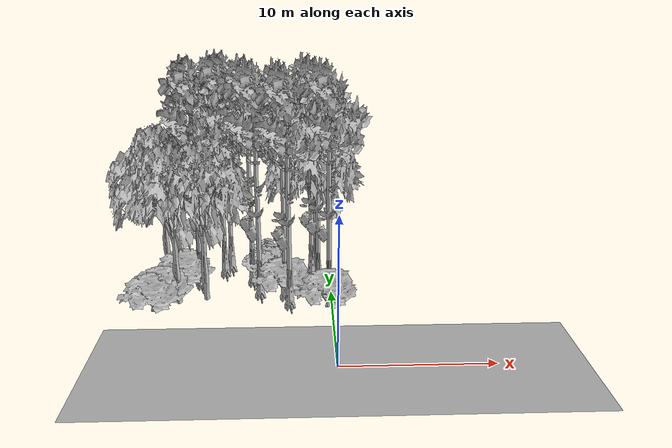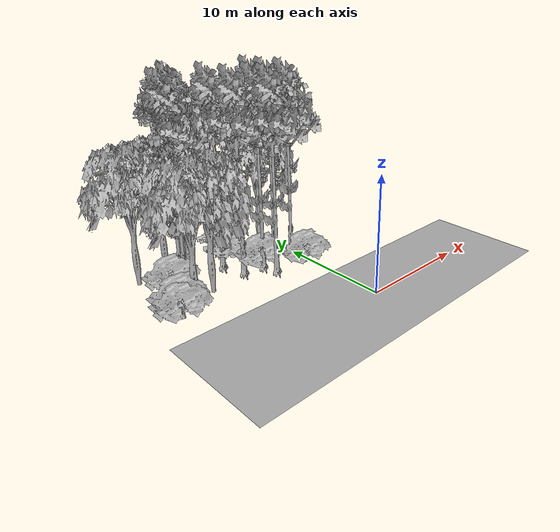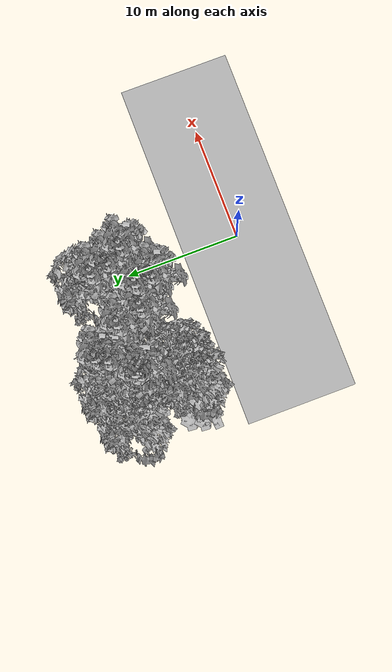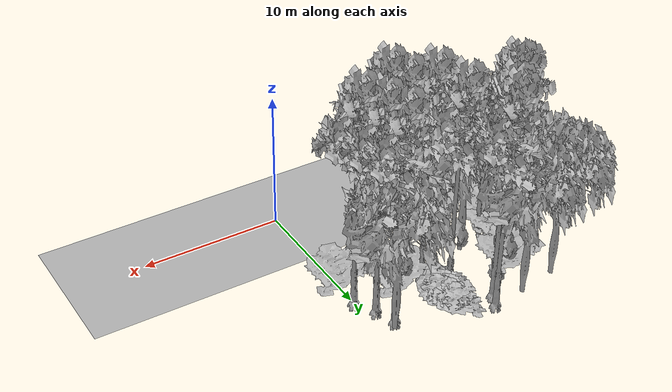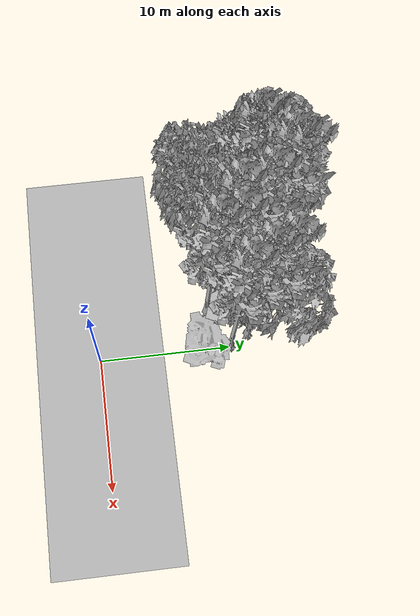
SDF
<sdf version="1.7">
 <world name="default">
  <model name="ground_plane">
   <static>1</static>
   <link name="link">
    <collision name="collision">
     <pose>-50 0 0 0 -0 0</pose>
     <geometry><plane><normal>0 0 1</normal><size>100 100</size></plane></geometry>
     <surface><contact><ode><min_depth>0.01</min_depth><max_vel>0</max_vel></ode></contact></surface>
    </collision>
    <visual name="grass">
     <cast_shadows>0</cast_shadows>
     <geometry>
      <mesh>
       <scale>0.5814285714285714 0.18142857142857144 0.1</scale>
       <uri>file://grass_plane/meshes/grass_plane.dae</uri>
      </mesh>
     </geometry>
    </visual>
   </link>
  </model>
  <model name="Tree 5">
   <static>1</static>
   <pose>-5.264318395612278 13.550032690171253 0 1.57079 -0 0</pose>
   <link name="link">
    <collision name="collision">
     <geometry><mesh><scale>4 2.5 4</scale><uri>model://tree_1/meshes/tree_1.obj</uri></mesh></geometry>
    </collision>
    <visual name="visual">
     <geometry><mesh><scale>4 2.5 4</scale><uri>model://tree_1/meshes/tree_1.obj</uri></mesh></geometry>
    </visual>
   </link>
  </model>
  <model name="Tree 16">
   <static>1</static>
   <pose>-10.024421451301343 12.044135002311886 0 1.57079 -0 0</pose>
   <link name="link">
    <collision name="collision">
     <geometry><mesh><scale>3.5 5 3.5</scale><uri>model://tree_9/meshes/tree_9.obj</uri></mesh></geometry>
    </collision>
    <visual name="visual">
     <geometry><mesh><scale>3.5 5 3.5</scale><uri>model://tree_9/meshes/tree_9.obj</uri></mesh></geometry>
    </visual>
   </link>
  </model>
  <model name="Tree 25">
   <static>1</static>
   <pose>-6.026550712602656 12.424141168342885 0 1.57079 -0 0</pose>
   <link name="link">
    <collision name="collision">
     <geometry><mesh><scale>3.5 5 3.5</scale><uri>model://tree_9/meshes/tree_9.obj</uri></mesh></geometry>
    </collision>
    <visual name="visual">
     <geometry><mesh><scale>3.5 5 3.5</scale><uri>model://tree_9/meshes/tree_9.obj</uri></mesh></geometry>
    </visual>
   </link>
  </model>
  <model name="Tree 89">
   <static>1</static>
   <pose>-13.046634344458937 14.291615541690458 0 1.57079 -0 0</pose>
   <link name="link">
    <collision name="collision">
     <geometry><mesh><scale>3.5 5 3.5</scale><uri>model://tree_2/meshes/tree_2.obj</uri></mesh></geometry>
    </collision>
    <visual name="visual">
     <geometry><mesh><scale>3.5 5 3.5</scale><uri>model://tree_2/meshes/tree_2.obj</uri></mesh></geometry>
    </visual>
   </link>
  </model>
  <model name="Tree 113">
   <static>1</static>
   <pose>-5.266420032821117 14.020296946593383 0 1.57079 -0 0</pose>
   <link name="link">
    <collision name="collision">
     <geometry><mesh><scale>4 2.5 4</scale><uri>model://tree_1/meshes/tree_1.obj</uri></mesh></geometry>
    </collision>
    <visual name="visual">
     <geometry><mesh><scale>4 2.5 4</scale><uri>model://tree_1/meshes/tree_1.obj</uri></mesh></geometry>
    </visual>
   </link>
  </model>
  <model name="Tree 124">
   <static>1</static>
   <pose>-1.422121976824954 13.013295417308306 0 1.57079 -0 0</pose>
   <link name="link">
    <collision name="collision">
     <geometry><mesh><scale>3.5 5 3.5</scale><uri>model://tree_9/meshes/tree_9.obj</uri></mesh></geometry>
    </collision>
    <visual name="visual">
     <geometry><mesh><scale>3.5 5 3.5</scale><uri>model://tree_9/meshes/tree_9.obj</uri></mesh></geometry>
    </visual>
   </link>
  </model>
  <model name="Tree 130">
   <static>1</static>
   <pose>-7.9289074412580405 14.99244341060836 0 1.57079 -0 0</pose>
   <link name="link">
    <collision name="collision">
     <geometry><mesh><scale>3.5 5 3.5</scale><uri>model://tree_9/meshes/tree_9.obj</uri></mesh></geometry>
    </collision>
    <visual name="visual">
     <geometry><mesh><scale>3.5 5 3.5</scale><uri>model://tree_9/meshes/tree_9.obj</uri></mesh></geometry>
    </visual>
   </link>
  </model>
  <model name="Tree 132">
   <static>1</static>
   <pose>-3.084415367620558 8.596249913424504 0 1.57079 -0 0</pose>
   <link name="link">
    <collision name="collision">
     <geometry><mesh><scale>3.5 5 3.5</scale><uri>model://tree_9/meshes/tree_9.obj</uri></mesh></geometry>
    </collision>
    <visual name="visual">
     <geometry><mesh><scale>3.5 5 3.5</scale><uri>model://tree_9/meshes/tree_9.obj</uri></mesh></geometry>
    </visual>
   </link>
  </model>
  <model name="Tree 179">
   <static>1</static>
   <pose>-0.33628155507449264 7.883558853047017 0 1.57079 -0 0</pose>
   <link name="link">
    <collision name="collision">
     <geometry><mesh><scale>3 2 3</scale><uri>model://tree_3/meshes/tree_3.obj</uri></mesh></geometry>
    </collision>
    <visual name="visual">
     <geometry><mesh><scale>3 2 3</scale><uri>model://tree_3/meshes/tree_3.obj</uri></mesh></geometry>
    </visual>
   </link>
  </model>
  <model name="Tree 241">
   <static>1</static>
   <pose>-10.160220546624508 12.459530144842528 0 1.57079 -0 0</pose>
   <link name="link">
    <collision name="collision">
     <geometry><mesh><scale>3.5 5 3.5</scale><uri>model://tree_9/meshes/tree_9.obj</uri></mesh></geometry>
    </collision>
    <visual name="visual">
     <geometry><mesh><scale>3.5 5 3.5</scale><uri>model://tree_9/meshes/tree_9.obj</uri></mesh></geometry>
    </visual>
   </link>
  </model>
  <model name="Tree 275">
   <static>1</static>
   <pose>-11.267416635094342 8.619118457434553 0 1.57079 -0 0</pose>
   <link name="link">
    <collision name="collision">
     <geometry><mesh><scale>3.5 5 3.5</scale><uri>model://tree_2/meshes/tree_2.obj</uri></mesh></geometry>
    </collision>
    <visual name="visual">
     <geometry><mesh><scale>3.5 5 3.5</scale><uri>model://tree_2/meshes/tree_2.obj</uri></mesh></geometry>
    </visual>
   </link>
  </model>
  <model name="Tree 289">
   <static>1</static>
   <pose>-0.9359246252445956 11.543655272026694 0 1.57079 -0 0</pose>
   <link name="link">
    <collision name="collision">
     <geometry><mesh><scale>3.5 5 3.5</scale><uri>model://tree_9/meshes/tree_9.obj</uri></mesh></geometry>
    </collision>
    <visual name="visual">
     <geometry><mesh><scale>3.5 5 3.5</scale><uri>model://tree_9/meshes/tree_9.obj</uri></mesh></geometry>
    </visual>
   </link>
  </model>
  <model name="Tree 302">
   <static>1</static>
   <pose>-0.1395645561576373 10.113936503751862 0 1.57079 -0 0</pose>
   <link name="link">
    <collision name="collision">
     <geometry><mesh><scale>3.5 5 3.5</scale><uri>model://tree_9/meshes/tree_9.obj</uri></mesh></geometry>
    </collision>
    <visual name="visual">
     <geometry><mesh><scale>3.5 5 3.5</scale><uri>model://tree_9/meshes/tree_9.obj</uri></mesh></geometry>
    </visual>
   </link>
  </model>
  <model name="Tree 314">
   <static>1</static>
   <pose>-3.5683520494852132 10.005478761292416 0 1.57079 -0 0</pose>
   <link name="link">
    <collision name="collision">
     <geometry><mesh><scale>3 2 3</scale><uri>model://tree_3/meshes/tree_3.obj</uri></mesh></geometry>
    </collision>
    <visual name="visual">
     <geometry><mesh><scale>3 2 3</scale><uri>model://tree_3/meshes/tree_3.obj</uri></mesh></geometry>
    </visual>
   </link>
  </model>
  <model name="Tree 330">
   <static>1</static>
   <pose>-8.353265834744 14.091143940141897 0 1.57079 -0 0</pose>
   <link name="link">
    <collision name="collision">
     <geometry><mesh><scale>3.5 5 3.5</scale><uri>model://tree_9/meshes/tree_9.obj</uri></mesh></geometry>
    </collision>
    <visual name="visual">
     <geometry><mesh><scale>3.5 5 3.5</scale><uri>model://tree_9/meshes/tree_9.obj</uri></mesh></geometry>
    </visual>
   </link>
  </model>
  <model name="Tree 334">
   <static>1</static>
   <pose>-3.4563124800515865 9.994831919744485 0 1.57079 -0 0</pose>
   <link name="link">
    <collision name="collision">
     <geometry><mesh><scale>3.5 5 3.5</scale><uri>model://tree_9/meshes/tree_9.obj</uri></mesh></geometry>
    </collision>
    <visual name="visual">
     <geometry><mesh><scale>3.5 5 3.5</scale><uri>model://tree_9/meshes/tree_9.obj</uri></mesh></geometry>
    </visual>
   </link>
  </model>
  <model name="Tree 338">
   <static>1</static>
   <pose>-5.3480515435676494 10.261716903782848 0 1.57079 -0 0</pose>
   <link name="link">
    <collision name="collision">
     <geometry><mesh><scale>3.5 5 3.5</scale><uri>model://tree_9/meshes/tree_9.obj</uri></mesh></geometry>
    </collision>
    <visual name="visual">
     <geometry><mesh><scale>3.5 5 3.5</scale><uri>model://tree_9/meshes/tree_9.obj</uri></mesh></geometry>
    </visual>
   </link>
  </model>
  <model name="Tree 346">
   <static>1</static>
   <pose>-10.240581937634353 14.863655871171805 0 1.57079 -0 0</pose>
   <link name="link">
    <collision name="collision">
     <geometry><mesh><scale>3.5 5 3.5</scale><uri>model://tree_2/meshes/tree_2.obj</uri></mesh></geometry>
    </collision>
    <visual name="visual">
     <geometry><mesh><scale>3.5 5 3.5</scale><uri>model://tree_2/meshes/tree_2.obj</uri></mesh></geometry>
    </visual>
   </link>
  </model>
  <model name="Tree 421">
   <static>1</static>
   <pose>-11.249093571207652 11.826343677515151 0 1.57079 -0 0</pose>
   <link name="link">
    <collision name="collision">
     <geometry><mesh><scale>3 2 3</scale><uri>model://tree_3/meshes/tree_3.obj</uri></mesh></geometry>
    </collision>
    <visual name="visual">
     <geometry><mesh><scale>3 2 3</scale><uri>model://tree_3/meshes/tree_3.obj</uri></mesh></geometry>
    </visual>
   </link>
  </model>
  <model name="Tree 437">
   <static>1</static>
   <pose>-1.1187330780887024 13.612514191516475 0 1.57079 -0 0</pose>
   <link name="link">
    <collision name="collision">
     <geometry><mesh><scale>3.5 5 3.5</scale><uri>model://tree_2/meshes/tree_2.obj</uri></mesh></geometry>
    </collision>
    <visual name="visual">
     <geometry><mesh><scale>3.5 5 3.5</scale><uri>model://tree_2/meshes/tree_2.obj</uri></mesh></geometry>
    </visual>
   </link>
  </model>
  <model name="Tree 465">
   <static>1</static>
   <pose>-12.488374779552068 8.696911221469442 0 1.57079 -0 0</pose>
   <link name="link">
    <collision name="collision">
     <geometry><mesh><scale>3 2 3</scale><uri>model://tree_3/meshes/tree_3.obj</uri></mesh></geometry>
    </collision>
    <visual name="visual">
     <geometry><mesh><scale>3 2 3</scale><uri>model://tree_3/meshes/tree_3.obj</uri></mesh></geometry>
    </visual>
   </link>
  </model>
  <model name="Tree 502">
   <static>1</static>
   <pose>-9.317127463741677 9.130063256894157 0 1.57079 -0 0</pose>
   <link name="link">
    <collision name="collision">
     <geometry><mesh><scale>3.5 5 3.5</scale><uri>model://tree_2/meshes/tree_2.obj</uri></mesh></geometry>
    </collision>
    <visual name="visual">
     <geometry><mesh><scale>3.5 5 3.5</scale><uri>model://tree_2/meshes/tree_2.obj</uri></mesh></geometry>
    </visual>
   </link>
  </model>
  <model name="Tree 538">
   <static>1</static>
   <pose>-12.885475456217726 7.627992332469184 0 1.57079 -0 0</pose>
   <link name="link">
    <collision name="collision">
     <geometry><mesh><scale>3 2 3</scale><uri>model://tree_3/meshes/tree_3.obj</uri></mesh></geometry>
    </collision>
    <visual name="visual">
     <geometry><mesh><scale>3 2 3</scale><uri>model://tree_3/meshes/tree_3.obj</uri></mesh></geometry>
    </visual>
   </link>
  </model>
 </world>
</sdf>
